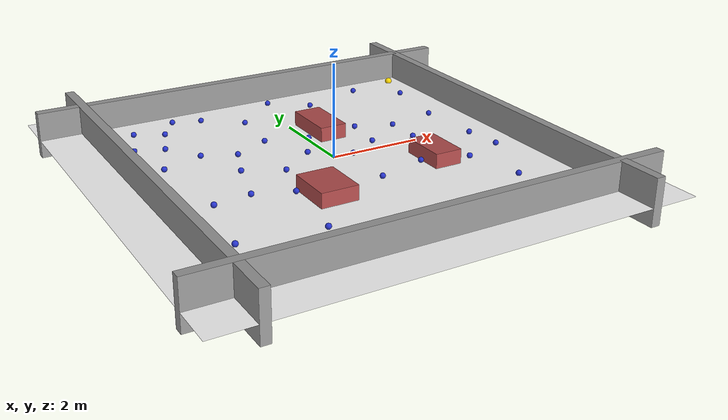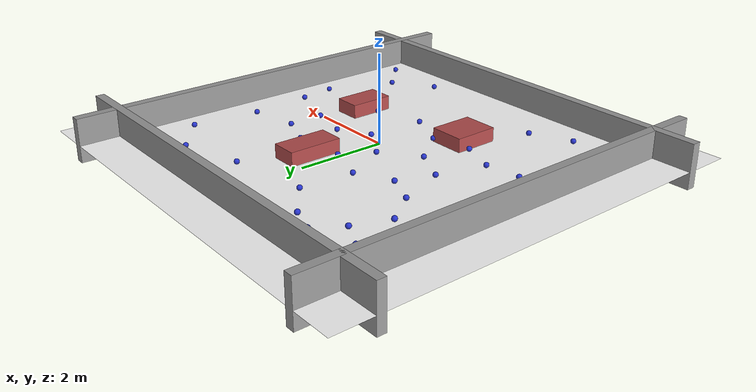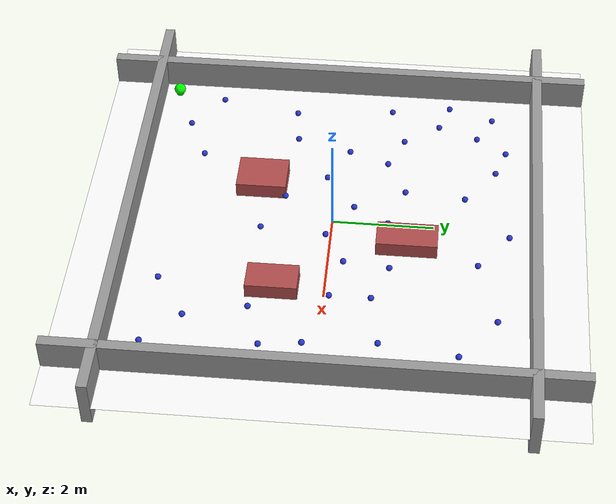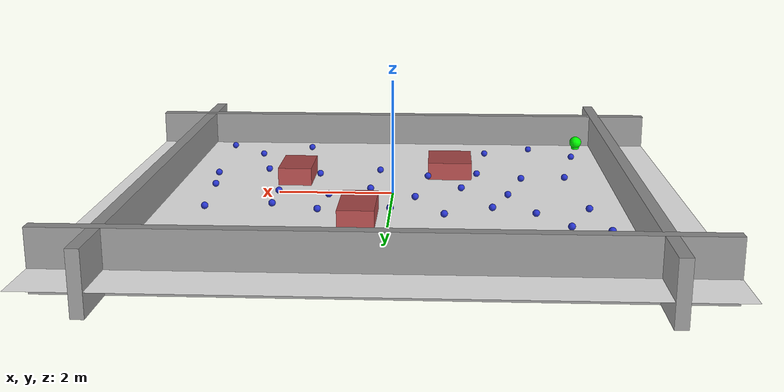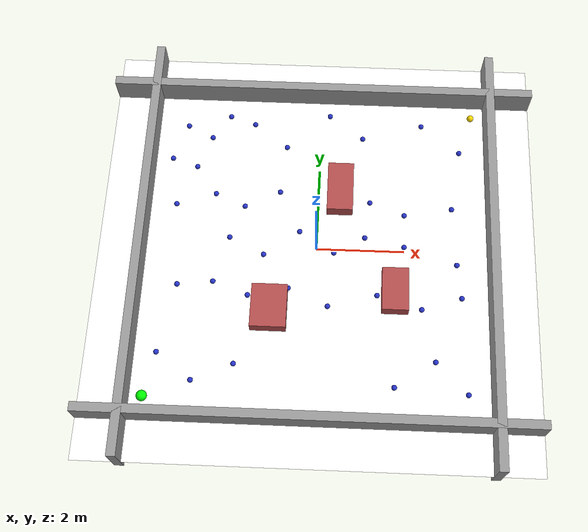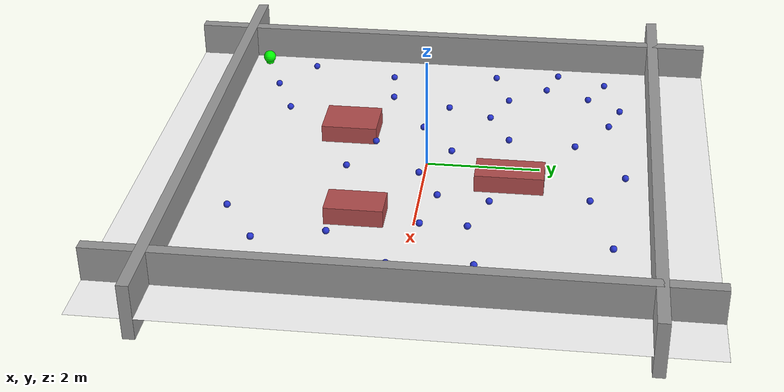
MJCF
<mujoco>
  <option gravity="0 0 -50" integrator="RK4" timestep="0.01"/>
  <visual><map znear="0.01"/></visual>

  <asset>
    <texture name="grid" type="2d" builtin="checker" width="512" height="512"
             rgb1="0.8 0.8 0.8" rgb2="1 1 1"/>
    <material name="grid_mat" texture="grid" texrepeat="10 10" reflectance="0.2"/>
  </asset>

  <default>
    <geom friction="1 0.01 0.001" solref="0.02 1" solimp="0.9 0.95 0.001"/>
    <site type="sphere" size="0.08"/>
    <default class="dot">
      <geom type="sphere" size="0.06" rgba="0.15 0.2 0.8 1"/>
    </default>
  </default>

  <worldbody>
    <camera name="top" pos="0 0 10" xyaxes="1 0 0 0 1 0"/>

    <!-- Floor + walls -->
    <geom name="floor" type="plane" size="5 5 0.1" material="grid_mat" rgba="1 1 1 1"/>
    <geom name="wall_left"  type="box" pos="-4 0 0.1" size="0.1 5 0.5" rgba="0.6 0.6 0.6 1"/>
    <geom name="wall_right" type="box" pos="4 0 0.1"  size="0.1 5 0.5" rgba="0.6 0.6 0.6 1"/>
    <geom name="wall_top"   type="box" pos="0 4 0.1"  size="5 0.1 0.5" rgba="0.6 0.6 0.6 1"/>
    <geom name="wall_bot"   type="box" pos="0 -4 0.1" size="5 0.1 0.5" rgba="0.6 0.6 0.6 1"/>

    <!-- Big obstacles -->
    <geom name="obstacle1" type="box" pos="0.5 1.5 0.1"  size="0.3 0.6 0.2" rgba="0.7 0.3 0.3 1"/>
    <geom name="obstacle2" type="box" pos="-1.0 -1.5 0.1" size="0.4 0.5 0.2" rgba="0.7 0.3 0.3 1"/>
    <geom name="obstacle3" type="box" pos="1.8 -1.0 0.1"  size="0.3 0.5 0.2" rgba="0.7 0.3 0.3 1"/>

    <!-- Start/Goal markers -->
    <site name="start" pos="-3.6 -3.6 0.02" rgba="0 1 0 1"/>
    <site name="goal"  pos=" 3.6  3.6 0.02" rgba="1 0.85 0 1"/>

    <!-- Static obstacle bodies (wrapped for APEX compatibility) -->
    <body name="cat1" pos="-3.2 3.1 0.06"><geom class="dot"/></body>
    <body name="cat2" pos="-2.6 2.8 0.06"><geom class="dot"/></body>
    <body name="cat3" pos="-3.5 2.2 0.06"><geom class="dot"/></body>
    <body name="cat4" pos="-2.9 2.0 0.06"><geom class="dot"/></body>
    <body name="cat5" pos="-2.2 3.4 0.06"><geom class="dot"/></body>
    <body name="cat6" pos="-1.6 3.2 0.06"><geom class="dot"/></body>
    <body name="cat7" pos="-0.8 2.6 0.06"><geom class="dot"/></body>
    <body name="cat8" pos="0.2 3.5 0.06"><geom class="dot"/></body>
    <body name="cat9" pos="1.0 2.9 0.06"><geom class="dot"/></body>
    <body name="cat10" pos="2.4 3.3 0.06"><geom class="dot"/></body>
    <body name="cat11" pos="3.3 2.6 0.06"><geom class="dot"/></body>
    <body name="cat12" pos="-3.3 1.0 0.06"><geom class="dot"/></body>
    <body name="cat13" pos="-2.4 1.3 0.06"><geom class="dot"/></body>
    <body name="cat14" pos="-1.7 1.0 0.06"><geom class="dot"/></body>
    <body name="cat15" pos="-0.9 1.4 0.06"><geom class="dot"/></body>
    <body name="cat16" pos="0.0 1.1 0.06"><geom class="dot"/></body>
    <body name="cat17" pos="1.2 1.2 0.06"><geom class="dot"/></body>
    <body name="cat18" pos="2.0 0.9 0.06"><geom class="dot"/></body>
    <body name="cat19" pos="3.1 1.1 0.06"><geom class="dot"/></body>
    <body name="cat20" pos="-2.0 0.2 0.06"><geom class="dot"/></body>
    <body name="cat21" pos="-1.2 -0.2 0.06"><geom class="dot"/></body>
    <body name="cat22" pos="-0.4 0.4 0.06"><geom class="dot"/></body>
    <body name="cat23" pos="0.4 -0.1 0.06"><geom class="dot"/></body>
    <body name="cat24" pos="1.1 0.3 0.06"><geom class="dot"/></body>
    <body name="cat25" pos="2.0 0.1 0.06"><geom class="dot"/></body>
    <body name="cat26" pos="3.2 -0.3 0.06"><geom class="dot"/></body>
    <body name="cat27" pos="-3.1 -1.0 0.06"><geom class="dot"/></body>
    <body name="cat28" pos="-2.3 -0.9 0.06"><geom class="dot"/></body>
    <body name="cat29" pos="-1.5 -1.2 0.06"><geom class="dot"/></body>
    <body name="cat30" pos="-0.6 -1.0 0.06"><geom class="dot"/></body>
    <body name="cat31" pos="0.3 -1.4 0.06"><geom class="dot"/></body>
    <body name="cat32" pos="1.4 -1.1 0.06"><geom class="dot"/></body>
    <body name="cat33" pos="2.4 -1.4 0.06"><geom class="dot"/></body>
    <body name="cat34" pos="3.3 -1.1 0.06"><geom class="dot"/></body>
    <body name="cat35" pos="-3.4 -2.6 0.06"><geom class="dot"/></body>
    <body name="cat36" pos="-2.6 -3.2 0.06"><geom class="dot"/></body>
    <body name="cat37" pos="-1.7 -2.8 0.06"><geom class="dot"/></body>
    <body name="cat38" pos="1.8 -3.2 0.06"><geom class="dot"/></body>
    <body name="cat39" pos="2.7 -2.6 0.06"><geom class="dot"/></body>
    <body name="cat40" pos="3.4 -3.3 0.06"><geom class="dot"/></body>

    <!-- Robot with freejoint for APEX compatibility -->
    <body name="robot" pos="-3.6 -3.6 0.12">
      <freejoint/>
      <geom name="robot_geom" type="sphere" size="0.12" rgba="0 1 0 1"/>
    </body>
  </worldbody>
</mujoco>
